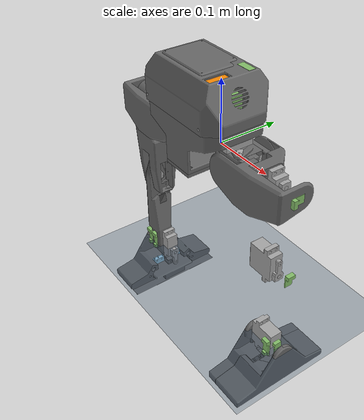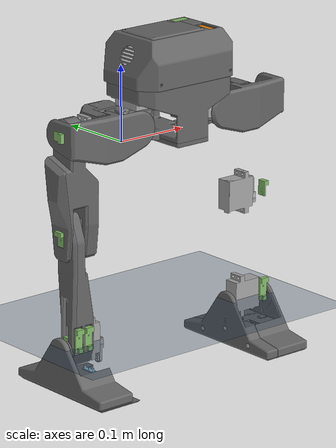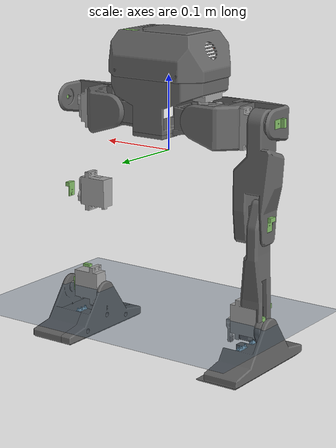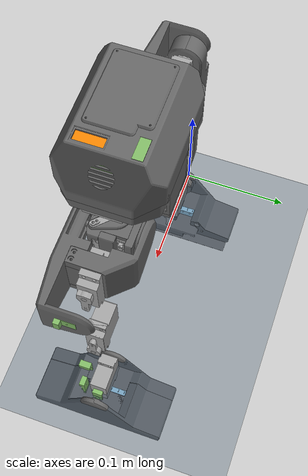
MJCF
<mujoco model="scene">
    <option timestep="0.005" gravity="0 0 -9.8" integrator="implicitfast"/>
    <include file="src/gnoci_gym/desc/gnoci.xml" />
    <default>
        <default class="miuzei_25kg">
            <position
                kp="49.80626029233553"
                kv="2.5679157997056907"
                ctrllimited="true"
                forcerange="-2.4377543428059765 2.4377543428059765"
                forcelimited="true"
            />
        </default>
    </default>

    <visual>
        <headlight diffuse="0.6 0.6 0.6" ambient="0.3 0.3 0.3" specular="0 0 0" />
        <rgba haze="0.15 0.25 0.35 1" />
        <global azimuth="160" elevation="-0.2" />
    </visual>

    <asset>
        <texture type="skybox" builtin="gradient" rgb1="0.3 0.5 0.7" rgb2="0 0 0" width="512"
            height="3072" />
        <texture type="2d" name="groundplane" builtin="checker" mark="edge" rgb1="0.2 0.3 0.4"
            rgb2="0.1 0.2 0.3"
            markrgb="0.8 0.8 0.8" width="300" height="300"/>
        <material name="groundplane" texture="groundplane" texuniform="true" texrepeat="5 5"
            reflectance="0.2" />
    </asset>

    <worldbody>
        <light pos="0 0 3.5" dir="0 0 -0.1" directional="true" />
        <camera name="track" mode="trackcom" pos="-0.5 -0.5 0.35"
            xyaxes="0.7071 -0.7071 0 0.4082 0.4082 0.8165"/>
        <geom name="floor" size="0 0 0.05" pos="0 0 -0.23" type="plane" material="groundplane" friction="1.0 0.005 0.0001"/>
    </worldbody>
</mujoco>

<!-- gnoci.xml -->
<mujoco model="onshape_export">
  <compiler angle="radian" meshdir="src/gnoci_gym/desc/assets" autolimits="true" />
  <default>
    <default class="onshape_export">
      <joint frictionloss="0.1" armature="0.005" />
      <position kp="50" dampratio="1" />
      <default class="visual">
        <geom type="mesh" contype="0" conaffinity="0" group="2" />
      </default>
      <default class="collision">
        <geom group="3" />
      </default>
    </default>
  </default>
  <worldbody>
    <body name="head_base" pos="0 0 0" quat="1 0 0 0" childclass="onshape_export">
      <freejoint name="root" />
      <geom type="mesh" class="visual" pos="0.0352673 -0.0419394 0.0175252" quat="1 -0 -0 0" mesh="head_servo_left" material="head_servo_left_material" mass="0.063" />
      <geom type="mesh" class="visual" pos="0.0352673 -0.0419394 0.0175252" quat="1 -0 -0 -0" mesh="head_servo_right" material="head_servo_right_material" mass="0.063" />
      <geom type="mesh" class="visual" pos="0.0279055 -0.0414035 0.0161252" quat="1 0 0 0" mesh="head_battery" material="head_battery_material" mass="0.089" />
      <geom type="mesh" class="visual" pos="0.0352673 -0.0419394 0.0171252" quat="1 0 0 0" mesh="head_base" material="head_base_material" mass="0.027" />
      <geom type="mesh" class="visual" pos="0.0357205 -0.0415894 0.0169139" quat="1 -0 -0 -0" mesh="head_fan" material="head_fan_material" mass="0.006" />
      <geom type="mesh" class="visual" pos="0.0352673 -0.0419394 0.0166252" quat="1 0 0 0" mesh="head_r_sense_left" material="head_r_sense_left_material" mass="1e-05" />
      <geom type="mesh" class="visual" pos="0.0352673 -0.0419394 0.0171252" quat="1 0 0 0" mesh="head_midframe" material="head_midframe_material" mass="0.037" />
      <geom type="mesh" class="visual" pos="0.0352673 -0.0415894 0.0171252" quat="1 0 0 -0" mesh="head_button" material="head_button_material" mass="0.012" />
      <geom type="mesh" class="visual" pos="0.0352673 -0.0419394 0.0171252" quat="1 0 0 0" mesh="head_main" material="head_main_material" mass="0.08" />
      <geom type="mesh" class="visual" pos="0.0352673 -0.0419394 0.0166252" quat="1 0 0 0" mesh="head_r_sense_right" material="head_r_sense_right_material" mass="1e-05" />
      <geom type="mesh" class="visual" pos="0.0352673 -0.0415894 0.0171252" quat="1 0 0 0" mesh="head_voltmeter" material="head_voltmeter_material" mass="0.003" />
      <geom type="mesh" class="visual" pos="0.0352673 -0.0419394 0.0171252" quat="1 0 0 0" mesh="head_powerboard" material="head_powerboard_material" />
      <geom type="mesh" class="visual" pos="0.0352673 -0.0415894 0.0171252" quat="1 0 0 0" mesh="head_lid" material="head_lid_material" mass="0.011" />
      <geom type="mesh" class="visual" pos="0.0352673 -0.0419394 0.0171252" quat="1 0 0 0" mesh="head_r_pi" material="head_r_pi_material" mass="0.075" />
      <geom type="mesh" class="visual" pos="0.0352673 -0.0415894 0.0171252" quat="1 0 0 0" mesh="head_top" material="head_top_material" mass="0.08" />
      <geom type="mesh" class="collision" pos="0.0352673 -0.0415894 0.0171252" quat="1 0 0 0" mesh="head_top" material="head_top_material" contype="0" conaffinity="0" mass="0.08" />
      <body name="left_yoke_lower_frame" pos="0.0962673 -0.0419394 0.0535752" quat="1 -0 0 -0">
        <joint axis="-0.0 -0.0 -1.0" name="head__left_yoke" type="hinge" range="-0.9016370916 0.6974335691" ref="0.0000000000" damping="0.17889452739994438" frictionloss="0.0072408653310164755" armature="0.014643797951585229" />
        <geom type="mesh" class="visual" pos="-0.061 0.00015 -0.03575" quat="1 0 -0 -0" mesh="left_yoke_r_sense" material="left_yoke_r_sense_material" mass="1e-05" />
        <geom type="mesh" class="visual" pos="-0.061 0.0001 -0.03575" quat="1 0 -0 -0" mesh="left_yoke_servo" material="left_yoke_servo_material" mass="0.063" />
        <geom type="mesh" class="visual" pos="-0.061 0 -0.03575" quat="1 0 0 -0" mesh="left_yoke_upper_frame" material="left_yoke_upper_frame_material" mass="0.01" />
        <geom type="mesh" class="visual" pos="-0.061 0 -0.03605" quat="1 0 0 0" mesh="head_servo_horn_left" material="head_servo_horn_left_material" mass="0.063" />
        <geom type="mesh" class="collision" pos="-0.061 0 -0.03605" quat="1 0 0 0" mesh="head_servo_horn_left" material="head_servo_horn_left_material" contype="0" conaffinity="0" mass="0.063" />
        <geom type="mesh" class="visual" pos="-0.061 0.00015 -0.03575" quat="1 0 -0 -0" mesh="left_yoke_lower_frame" material="left_yoke_lower_frame_material" mass="0.02" />
        <body name="left_hip_back" pos="0.01 -0.03 -0.0147" quat="0.707107 -0.707107 0 -0">
          <joint axis="-0.0 -0.0 -1.0" name="left_yoke__hip" type="hinge" range="-0.4241150082 0.6785840132" ref="0.0000000000" damping="0.17889452739994438" frictionloss="0.0072408653310164755" armature="0.014643797951585229" />
          <geom type="mesh" class="visual" pos="-0.071 0.0213479 0.0304" quat="0.707107 0.707107 0 -0" mesh="left_hip_back" material="left_hip_back_material" mass="0.023" />
          <geom type="mesh" class="collision" pos="-0.071 0.0213479 0.0304" quat="0.707107 0.707107 0 -0" mesh="left_hip_back" material="left_hip_back_material" contype="0" conaffinity="0" mass="0.023" />
          <geom type="mesh" class="visual" pos="-0.071 0.0213479 0.0304" quat="0.707107 0.707107 0 -0" mesh="left_hip_servo" material="left_hip_servo_material" mass="0.063" />
          <geom type="mesh" class="visual" pos="-0.071 0.02105 0.0301" quat="0.707107 0.707107 0 -0" mesh="left_yoke_servo_horn" material="left_yoke_servo_horn_material" mass="0.063" />
          <geom type="mesh" class="collision" pos="-0.071 0.02105 0.0301" quat="0.707107 0.707107 0 -0" mesh="left_yoke_servo_horn" material="left_yoke_servo_horn_material" contype="0" conaffinity="0" mass="0.063" />
          <geom type="mesh" class="visual" pos="-0.0722 0.02105 0.0304" quat="0.707107 0.707107 0 -0" mesh="left_hip_r_sense" material="left_hip_r_sense_material" mass="1e-05" />
          <geom type="mesh" class="visual" pos="-0.071 0.02105 0.0304" quat="0.707107 0.707107 0 -0" mesh="left_hip_front" material="left_hip_front_material" mass="0.036" />
          <geom type="mesh" class="collision" pos="-0.071 0.02105 0.0304" quat="0.707107 0.707107 0 -0" mesh="left_hip_front" material="left_hip_front_material" contype="0" conaffinity="0" mass="0.036" />
          <body name="left_upper_leg" pos="0.0755 -0.00365213 0.0301319" quat="0.707107 0 -0.707107 -0">
            <joint axis="-0.0 -0.0 -1.0" name="left_hip__upper_leg" type="hinge" range="-0.8168140899 1.3917255455" ref="-0.7068583471" damping="0.17889452739994438" frictionloss="0.0072408653310164755" armature="0.014643797951585229" />
            <geom type="mesh" class="visual" pos="0.000268125 0.025 0.1476" quat="0.5 0.5 0.5 -0.5" mesh="left_upper_leg_r_sense" material="left_upper_leg_r_sense_material" mass="1e-05" />
            <geom type="mesh" class="visual" pos="0.000268125 0.025 0.1468" quat="0.5 0.5 0.5 -0.5" mesh="left_upper_leg" material="left_upper_leg_material" mass="0.067" />
            <geom type="mesh" class="collision" pos="0.000268125 0.025 0.1468" quat="0.5 0.5 0.5 -0.5" mesh="left_upper_leg" material="left_upper_leg_material" contype="0" conaffinity="0" mass="0.067" />
            <geom type="mesh" class="visual" pos="0.000268125 0.025 0.1468" quat="0.5 0.5 0.5 -0.5" mesh="left_upper_leg_servo" material="left_upper_leg_servo_material" mass="0.063" />
            <geom type="mesh" class="visual" pos="0.000268125 0.025 0.1465" quat="0.5 0.5 0.5 -0.5" mesh="left_hip_servo_horn" material="left_hip_servo_horn_material" mass="0.063" />
            <geom type="mesh" class="collision" pos="0.000268125 0.025 0.1465" quat="0.5 0.5 0.5 -0.5" mesh="left_hip_servo_horn" material="left_hip_servo_horn_material" contype="0" conaffinity="0" mass="0.063" />
            <body name="left_lower_leg" pos="0 0.14 -0.0021" quat="1 -0 -0 -0">
              <joint axis="-0.0 -0.0 -1.0" name="left_upper_leg__lower_leg" type="hinge" range="-0.9424777961 1.3446016557" ref="1.4137166941" damping="0.17889452739994438" frictionloss="0.0072408653310164755" armature="0.014643797951585229" />
              <geom type="mesh" class="visual" pos="0.000268125 -0.115 0.1492" quat="0.5 0.5 0.5 -0.5" mesh="left_lower_leg_servo" material="left_lower_leg_servo_material" mass="0.063" />
              <geom type="mesh" class="visual" pos="0.000268125 -0.115 0.1489" quat="0.5 0.5 0.5 -0.5" mesh="left_upper_leg_servo_horn" material="left_upper_leg_servo_horn_material" mass="0.063" />
              <geom type="mesh" class="collision" pos="0.000268125 -0.115 0.1489" quat="0.5 0.5 0.5 -0.5" mesh="left_upper_leg_servo_horn" material="left_upper_leg_servo_horn_material" contype="0" conaffinity="0" mass="0.063" />
              <geom type="mesh" class="visual" pos="0.000268125 -0.115 0.1492" quat="0.5 0.5 0.5 -0.5" mesh="left_lower_leg" material="left_lower_leg_material" mass="0.044" />
              <geom type="mesh" class="collision" pos="0.000268125 -0.115 0.1492" quat="0.5 0.5 0.5 -0.5" mesh="left_lower_leg" material="left_lower_leg_material" contype="0" conaffinity="0" mass="0.044" />
              <geom type="mesh" class="visual" pos="0.000968125 -0.115 0.1492" quat="0.5 0.5 0.5 -0.5" mesh="left_lower_leg_c_sense_1" material="left_lower_leg_c_sense_1_material" mass="1e-05" />
              <geom type="mesh" class="visual" pos="0.000968125 -0.115 0.1492" quat="0.5 0.5 0.5 -0.5" mesh="left_lower_leg_c_sense_2" material="left_lower_leg_c_sense_2_material" mass="1e-05" />
              <geom type="mesh" class="visual" pos="0.000268125 -0.115 0.1492" quat="0.5 0.5 0.5 -0.5" mesh="left_lower_leg_r_sense" material="left_lower_leg_r_sense_material" mass="1e-05" />
              <body name="left_foot_base" pos="-0 0.14 0.0426" quat="0 -1 0 -0">
                <joint axis="-0.0 -0.0 -1.0" name="left_lower_leg__foot" type="hinge" range="-0.9613273520 1.5550883635" ref="0.7068583471" damping="0.17889452739994438" frictionloss="0.0072408653310164755" armature="0.014643797951585229" />
                <geom type="mesh" class="visual" pos="0.000268125 0.255 -0.1063" quat="0.5 -0.5 -0.5 -0.5" mesh="left_foot_limit_switch_1" material="left_foot_limit_switch_1_material" />
                <geom type="mesh" class="collision" pos="0.000268125 0.255 -0.1063" quat="0.5 -0.5 -0.5 -0.5" mesh="left_foot_limit_switch_1" material="left_foot_limit_switch_1_material" contype="0" conaffinity="0" />
                <geom type="mesh" class="visual" pos="0.000268105 0.258024 -0.106099" quat="0.5 -0.5 -0.5 -0.5" mesh="left_foot_base" material="left_foot_base_material" mass="0.023" />
                <geom type="mesh" class="collision" pos="0.000268105 0.258024 -0.106099" quat="0.5 -0.5 -0.5 -0.5" mesh="left_foot_base" material="left_foot_base_material" contype="0" conaffinity="0" mass="0.023" />
                <geom type="mesh" class="visual" pos="0.000268125 0.255 -0.1063" quat="0.5 -0.5 -0.5 -0.5" mesh="left_foot_right_side" material="left_foot_right_side_material" mass="0.024" />
                <geom type="mesh" class="collision" pos="0.000268125 0.255 -0.1063" quat="0.5 -0.5 -0.5 -0.5" mesh="left_foot_right_side" material="left_foot_right_side_material" contype="0" conaffinity="0" mass="0.024" />
                <geom type="mesh" class="visual" pos="0.000268125 0.255 -0.1063" quat="0.5 -0.5 -0.5 -0.5" mesh="left_foot_limit_switch_2" material="left_foot_limit_switch_2_material" />
                <geom type="mesh" class="collision" pos="0.000268125 0.255 -0.1063" quat="0.5 -0.5 -0.5 -0.5" mesh="left_foot_limit_switch_2" material="left_foot_limit_switch_2_material" contype="0" conaffinity="0" />
                <geom type="mesh" class="visual" pos="0.000268125 0.255 -0.1066" quat="0.5 -0.5 -0.5 -0.5" mesh="left_lower_leg_servo_horn" material="left_lower_leg_servo_horn_material" mass="0.063" />
                <geom type="mesh" class="collision" pos="0.000268125 0.255 -0.1066" quat="0.5 -0.5 -0.5 -0.5" mesh="left_lower_leg_servo_horn" material="left_lower_leg_servo_horn_material" contype="0" conaffinity="0" mass="0.063" />
                <geom type="mesh" class="visual" pos="0.000268125 0.255 -0.1063" quat="0.5 -0.5 -0.5 -0.5" mesh="left_foot_left_side" material="left_foot_left_side_material" mass="0.037" />
                <geom type="mesh" class="collision" pos="0.000268125 0.255 -0.1063" quat="0.5 -0.5 -0.5 -0.5" mesh="left_foot_left_side" material="left_foot_left_side_material" contype="0" conaffinity="0" mass="0.037" />
                <site group="3" name="forward_left_c_sense" pos="-0.07810816 -0.05216554 0.03400101" quat="0.5 0.5 -0.5 0.5" size="0.04" />
                <site group="3" name="back_left_c_sense" pos="0.07810813 -0.05216554 0.03400101" quat="0.5 0.5 -0.5 0.5" size="0.04" />
                <geom name="left_foot_front_inner_sphere" type="sphere" size="0.006" pos="-0.07810816 -0.05216554 0.00500100" solref="0.03 2" solimp="0.9 0.95 0.006 0.5 2" priority="1" group="3" contype="2" conaffinity="1" mass="0" />
                <geom name="left_foot_back_inner_sphere" type="sphere" size="0.006" pos="0.07810813 -0.05216554 0.00500100" solref="0.03 2" solimp="0.9 0.95 0.006 0.5 2" priority="1" group="3" contype="2" conaffinity="1" mass="0" />
                <geom name="left_foot_front_outer_sphere" type="sphere" size="0.006" pos="-0.07810816 -0.05216554 0.06300101" solref="0.03 2" solimp="0.9 0.95 0.006 0.5 2" priority="1" group="3" contype="2" conaffinity="1" mass="0" />
                <geom name="left_foot_back_outer_sphere" type="sphere" size="0.006" pos="0.07810813 -0.05216554 0.06300101" solref="0.03 2" solimp="0.9 0.95 0.006 0.5 2" priority="1" group="3" contype="2" conaffinity="1" mass="0" />
              </body>
            </body>
          </body>
        </body>
      </body>
      <body name="right_yoke_lower_frame" pos="-0.0257327 -0.0419394 0.0535752" quat="1 -0 -0 -0">
        <joint axis="0 0 1" name="head__right_yoke" type="hinge" range="-0.8325220532 0.7099999397" ref="0.0000000000" damping="0.17889452739994438" frictionloss="0.0072408653310164755" armature="0.014643797951585229" />
        <geom type="mesh" class="visual" pos="0.061 0 -0.03605" quat="1 0 0 0" mesh="head_servo_horn_right" material="head_servo_horn_right_material" mass="0.063" />
        <geom type="mesh" class="collision" pos="0.061 0 -0.03605" quat="1 0 0 0" mesh="head_servo_horn_right" material="head_servo_horn_right_material" contype="0" conaffinity="0" mass="0.063" />
        <geom type="mesh" class="visual" pos="0.061 0.00015 -0.03575" quat="1 0 0 0" mesh="right_yoke_r_sense" material="right_yoke_r_sense_material" mass="1e-05" />
        <geom type="mesh" class="visual" pos="0.061 0.00015 -0.03575" quat="1 0 -0 0" mesh="right_yoke_lower_frame" material="right_yoke_lower_frame_material" mass="0.02" />
        <geom type="mesh" class="visual" pos="0.061 5e-05 -0.03575" quat="1 0 -0 0" mesh="right_yoke_servo" material="right_yoke_servo_material" mass="0.063" />
        <geom type="mesh" class="visual" pos="0.061 0 -0.03575" quat="1 0 0 0" mesh="right_yoke_upper_frame" material="right_yoke_upper_frame_material" mass="0.01" />
        <body name="right_hip_back" pos="-0.01 -0.03005 -0.0147" quat="0.707107 -0.707107 -0 0">
          <joint axis="0 0 1" name="right_yoke__hip" type="hinge" range="-0.4241150082 0.6565928646" ref="0.0000000000" damping="0.17889452739994438" frictionloss="0.0072408653310164755" armature="0.014643797951585229" />
          <geom type="mesh" class="visual" pos="0.071 0.02105 0.0301" quat="0.707107 0.707107 0 -0" mesh="right_yoke_servo_horn" material="right_yoke_servo_horn_material" mass="0.063" />
          <geom type="mesh" class="collision" pos="0.071 0.02105 0.0301" quat="0.707107 0.707107 0 -0" mesh="right_yoke_servo_horn" material="right_yoke_servo_horn_material" contype="0" conaffinity="0" mass="0.063" />
          <geom type="mesh" class="visual" pos="0.071 0.02105 0.0304" quat="0.707107 0.707107 0 -0" mesh="right_hip_front" material="right_hip_front_material" mass="0.036" />
          <geom type="mesh" class="collision" pos="0.071 0.02105 0.0304" quat="0.707107 0.707107 0 -0" mesh="right_hip_front" material="right_hip_front_material" contype="0" conaffinity="0" mass="0.036" />
          <geom type="mesh" class="visual" pos="0.071 0.0213479 0.0304" quat="0.707107 0.707107 0 -0" mesh="right_hip_back" material="right_hip_back_material" mass="0.023" />
          <geom type="mesh" class="collision" pos="0.071 0.0213479 0.0304" quat="0.707107 0.707107 0 -0" mesh="right_hip_back" material="right_hip_back_material" contype="0" conaffinity="0" mass="0.023" />
          <geom type="mesh" class="visual" pos="0.0722 0.02105 0.0304" quat="0.707107 0.707107 0 0" mesh="right_hip_r_sense" material="right_hip_r_sense_material" mass="1e-05" />
          <geom type="mesh" class="visual" pos="0.071 0.0213479 0.0304" quat="0.707107 0.707107 0 -0" mesh="right_hip_servo" material="right_hip_servo_material" mass="0.063" />
          <body name="right_upper_leg" pos="-0.0755 -0.00365213 0.0301319" quat="0 -0.707107 0 -0.707107">
            <joint axis="0 0 1" name="right_hip__upper_leg" type="hinge" range="-0.8607963871 1.4294246574" ref="-0.7068583471" damping="0.17889452739994438" frictionloss="0.0072408653310164755" armature="0.014643797951585229" />
            <geom type="mesh" class="visual" pos="0.000268125 -0.025 0.1465" quat="0.5 -0.5 -0.5 -0.5" mesh="right_hip_servo_horn" material="right_hip_servo_horn_material" mass="0.063" />
            <geom type="mesh" class="collision" pos="0.000268125 -0.025 0.1465" quat="0.5 -0.5 -0.5 -0.5" mesh="right_hip_servo_horn" material="right_hip_servo_horn_material" contype="0" conaffinity="0" mass="0.063" />
            <geom type="mesh" class="visual" pos="0.000268125 -0.025 0.1468" quat="0.5 -0.5 -0.5 -0.5" mesh="right_upper_leg_servo" material="right_upper_leg_servo_material" mass="0.063" />
            <geom type="mesh" class="visual" pos="0.000268125 -0.025 0.1468" quat="0.5 -0.5 -0.5 -0.5" mesh="right_upper_leg" material="right_upper_leg_material" mass="0.067" />
            <geom type="mesh" class="collision" pos="0.000268125 -0.025 0.1468" quat="0.5 -0.5 -0.5 -0.5" mesh="right_upper_leg" material="right_upper_leg_material" contype="0" conaffinity="0" mass="0.067" />
            <geom type="mesh" class="visual" pos="0.000268125 -0.025 0.1476" quat="0.5 -0.5 -0.5 -0.5" mesh="right_upper_leg_r_sense" material="right_upper_leg_r_sense_material" mass="1e-05" />
            <body name="right_lower_leg" pos="-0 -0.14 -0.0021" quat="1 -0 0 -0">
              <joint axis="0 0 1" name="right_upper_leg__lower_leg" type="hinge" range="-0.8796459430 1.4011503235" ref="1.4137166941" damping="0.17889452739994438" frictionloss="0.0072408653310164755" armature="0.014643797951585229" />
              <geom type="mesh" class="visual" pos="0.000268125 0.115 0.1492" quat="0.5 -0.5 -0.5 -0.5" mesh="right_lower_leg_r_sense" material="right_lower_leg_r_sense_material" mass="1e-05" />
              <geom type="mesh" class="visual" pos="0.000968125 0.115 0.1492" quat="0.5 -0.5 -0.5 -0.5" mesh="right_lower_leg_c_sense_2" material="right_lower_leg_c_sense_2_material" mass="1e-05" />
              <geom type="mesh" class="visual" pos="0.000268125 0.115 0.1492" quat="0.5 -0.5 -0.5 -0.5" mesh="right_lower_leg" material="right_lower_leg_material" mass="0.044" />
              <geom type="mesh" class="collision" pos="0.000268125 0.115 0.1492" quat="0.5 -0.5 -0.5 -0.5" mesh="right_lower_leg" material="right_lower_leg_material" contype="0" conaffinity="0" mass="0.044" />
              <geom type="mesh" class="visual" pos="0.000268125 0.115 0.1489" quat="0.5 -0.5 -0.5 -0.5" mesh="right_upper_leg_servo_horn" material="right_upper_leg_servo_horn_material" mass="0.063" />
              <geom type="mesh" class="collision" pos="0.000268125 0.115 0.1489" quat="0.5 -0.5 -0.5 -0.5" mesh="right_upper_leg_servo_horn" material="right_upper_leg_servo_horn_material" contype="0" conaffinity="0" mass="0.063" />
              <geom type="mesh" class="visual" pos="0.000268125 0.115 0.1492" quat="0.5 -0.5 -0.5 -0.5" mesh="right_lower_leg_servo" material="right_lower_leg_servo_material" mass="0.063" />
              <geom type="mesh" class="visual" pos="0.000968125 0.115 0.1492" quat="0.5 -0.5 -0.5 -0.5" mesh="right_lower_leg_c_sense_1" material="right_lower_leg_c_sense_1_material" mass="1e-05" />
              <body name="right_foot_base" pos="0 -0.14 0.0426" quat="0 1 0 -0">
                <joint axis="0 0 1" name="right_lower_leg__foot" type="hinge" range="-0.9016370916 1.6524777358" ref="0.7068583471" damping="0.17889452739994438" frictionloss="0.0072408653310164755" armature="0.014643797951585229" />
                <geom type="mesh" class="visual" pos="0.000268125 -0.255 -0.1066" quat="0.5 0.5 0.5 -0.5" mesh="right_lower_leg_servo_horn" material="right_lower_leg_servo_horn_material" mass="0.063" />
                <geom type="mesh" class="collision" pos="0.000268125 -0.255 -0.1066" quat="0.5 0.5 0.5 -0.5" mesh="right_lower_leg_servo_horn" material="right_lower_leg_servo_horn_material" contype="0" conaffinity="0" mass="0.063" />
                <geom type="mesh" class="visual" pos="0.000268125 -0.255 -0.1063" quat="0.5 0.5 0.5 -0.5" mesh="right_foot_right_side" material="right_foot_right_side_material" mass="0.037" />
                <geom type="mesh" class="collision" pos="0.000268125 -0.255 -0.1063" quat="0.5 0.5 0.5 -0.5" mesh="right_foot_right_side" material="right_foot_right_side_material" contype="0" conaffinity="0" mass="0.037" />
                <geom type="mesh" class="visual" pos="0.000268125 -0.255 -0.1063" quat="0.5 0.5 0.5 -0.5" mesh="right_foot_left_side" material="right_foot_left_side_material" mass="0.024" />
                <geom type="mesh" class="collision" pos="0.000268125 -0.255 -0.1063" quat="0.5 0.5 0.5 -0.5" mesh="right_foot_left_side" material="right_foot_left_side_material" contype="0" conaffinity="0" mass="0.024" />
                <geom type="mesh" class="visual" pos="0.000268125 -0.255 -0.1063" quat="0.5 0.5 0.5 -0.5" mesh="right_foot_limit_switch_2" material="right_foot_limit_switch_2_material" />
                <geom type="mesh" class="collision" pos="0.000268125 -0.255 -0.1063" quat="0.5 0.5 0.5 -0.5" mesh="right_foot_limit_switch_2" material="right_foot_limit_switch_2_material" contype="0" conaffinity="0" />
                <geom type="mesh" class="visual" pos="0.000268113 -0.258024 -0.106501" quat="0.5 0.5 0.5 -0.5" mesh="right_foot_base" material="right_foot_base_material" mass="0.023" />
                <geom type="mesh" class="collision" pos="0.000268113 -0.258024 -0.106501" quat="0.5 0.5 0.5 -0.5" mesh="right_foot_base" material="right_foot_base_material" contype="0" conaffinity="0" mass="0.023" />
                <geom type="mesh" class="visual" pos="0.000268125 -0.255 -0.1063" quat="0.5 0.5 0.5 -0.5" mesh="right_foot_limit_switch_1" material="right_foot_limit_switch_1_material" />
                <geom type="mesh" class="collision" pos="0.000268125 -0.255 -0.1063" quat="0.5 0.5 0.5 -0.5" mesh="right_foot_limit_switch_1" material="right_foot_limit_switch_1_material" contype="0" conaffinity="0" />
                <site group="3" name="forward_right_c_sense" pos="-0.07810816 0.05216554 0.03400101" quat="0.5 -0.5 0.5 0.5" size="0.04" />
                <site group="3" name="back_right_c_sense" pos="0.07810813 0.05216554 0.03400101" quat="0.5 -0.5 0.5 0.5" size="0.04" />
                <geom name="right_foot_front_outer_sphere" type="sphere" size="0.006" pos="-0.07810816 0.05216554 0.00500100" solref="0.03 2" solimp="0.9 0.95 0.006 0.5 2" priority="1" group="3" contype="2" conaffinity="1" mass="0" />
                <geom name="right_foot_back_outer_sphere" type="sphere" size="0.006" pos="0.07810813 0.05216554 0.00500100" solref="0.03 2" solimp="0.9 0.95 0.006 0.5 2" priority="1" group="3" contype="2" conaffinity="1" mass="0" />
                <geom name="right_foot_front_inner_sphere" type="sphere" size="0.006" pos="-0.07810816 0.05216554 0.06300101" solref="0.03 2" solimp="0.9 0.95 0.006 0.5 2" priority="1" group="3" contype="2" conaffinity="1" mass="0" />
                <geom name="right_foot_back_inner_sphere" type="sphere" size="0.006" pos="0.07810813 0.05216554 0.06300101" solref="0.03 2" solimp="0.9 0.95 0.006 0.5 2" priority="1" group="3" contype="2" conaffinity="1" mass="0" />
              </body>
            </body>
          </body>
        </body>
      </body>
      <site group="3" name="imu" pos="0.0202673 -0.0559394 0.0971252" quat="0 1 0 0" />
    </body>
  </worldbody>
  <asset>
    <mesh file="left_yoke_servo.stl" />
    <mesh file="right_hip_front.stl" />
    <mesh file="right_yoke_servo_horn.stl" />
    <mesh file="left_lower_leg_c_sense_1.stl" />
    <mesh file="left_lower_leg_c_sense_2.stl" />
    <mesh file="left_yoke_r_sense.stl" />
    <mesh file="left_lower_leg_servo_horn.stl" />
    <mesh file="left_upper_leg_servo.stl" />
    <mesh file="right_lower_leg_servo.stl" />
    <mesh file="head_r_sense_left.stl" />
    <mesh file="right_foot_limit_switch_2.stl" />
    <mesh file="right_yoke_r_sense.stl" />
    <mesh file="left_upper_leg_servo_horn.stl" />
    <mesh file="head_r_sense_right.stl" />
    <mesh file="head_r_pi.stl" />
    <mesh file="left_hip_servo_horn.stl" />
    <mesh file="head_lid.stl" />
    <mesh file="head_servo_right.stl" />
    <mesh file="left_lower_leg_servo.stl" />
    <mesh file="head_voltmeter.stl" />
    <mesh file="left_lower_leg_r_sense.stl" />
    <mesh file="head_button.stl" />
    <mesh file="left_foot_base.stl" />
    <mesh file="right_upper_leg.stl" />
    <mesh file="left_foot_limit_switch_1.stl" />
    <mesh file="head_base.stl" />
    <mesh file="right_hip_back.stl" />
    <mesh file="head_battery.stl" />
    <mesh file="right_upper_leg_r_sense.stl" />
    <mesh file="right_hip_servo.stl" />
    <mesh file="head_fan.stl" />
    <mesh file="left_yoke_upper_frame.stl" />
    <mesh file="left_hip_back.stl" />
    <mesh file="right_foot_left_side.stl" />
    <mesh file="left_yoke_servo_horn.stl" />
    <mesh file="left_hip_front.stl" />
    <mesh file="left_upper_leg.stl" />
    <mesh file="right_upper_leg_servo.stl" />
    <mesh file="head_midframe.stl" />
    <mesh file="left_upper_leg_r_sense.stl" />
    <mesh file="right_lower_leg_c_sense_1.stl" />
    <mesh file="right_hip_servo_horn.stl" />
    <mesh file="right_upper_leg_servo_horn.stl" />
    <mesh file="head_main.stl" />
    <mesh file="right_foot_limit_switch_1.stl" />
    <mesh file="right_yoke_servo.stl" />
    <mesh file="left_foot_right_side.stl" />
    <mesh file="right_lower_leg.stl" />
    <mesh file="head_top.stl" />
    <mesh file="head_servo_horn_left.stl" />
    <mesh file="left_hip_r_sense.stl" />
    <mesh file="right_lower_leg_servo_horn.stl" />
    <mesh file="left_lower_leg.stl" />
    <mesh file="left_foot_limit_switch_2.stl" />
    <mesh file="right_hip_r_sense.stl" />
    <mesh file="head_servo_left.stl" />
    <mesh file="left_yoke_lower_frame.stl" />
    <mesh file="right_yoke_lower_frame.stl" />
    <mesh file="right_yoke_upper_frame.stl" />
    <mesh file="right_lower_leg_r_sense.stl" />
    <mesh file="right_foot_right_side.stl" />
    <mesh file="right_foot_base.stl" />
    <mesh file="right_lower_leg_c_sense_2.stl" />
    <mesh file="left_foot_left_side.stl" />
    <mesh file="left_hip_servo.stl" />
    <mesh file="head_servo_horn_right.stl" />
    <mesh file="head_powerboard.stl" />
    <material name="head_servo_left_material" rgba="0.647059 0.647059 0.647059 1" />
    <material name="head_servo_right_material" rgba="0.647059 0.647059 0.647059 1" />
    <material name="head_battery_material" rgba="0.87451 0.447059 0.317647 1" />
    <material name="head_base_material" rgba="0.4 0.4 0.4 1" />
    <material name="head_fan_material" rgba="0.917647 0.917647 0.917647 1" />
    <material name="head_r_sense_left_material" rgba="0.513725 0.737255 0.407843 1" />
    <material name="head_midframe_material" rgba="0.4 0.4 0.4 1" />
    <material name="head_button_material" rgba="0.972549 0.529412 0.00392157 1" />
    <material name="head_main_material" rgba="0.4 0.4 0.4 1" />
    <material name="head_r_sense_right_material" rgba="0.513725 0.737255 0.407843 1" />
    <material name="head_voltmeter_material" rgba="0.513725 0.737255 0.407843 1" />
    <material name="head_powerboard_material" rgba="0.513725 0.737255 0.407843 1" />
    <material name="head_lid_material" rgba="0.4 0.4 0.4 1" />
    <material name="head_r_pi_material" rgba="0.513725 0.737255 0.407843 1" />
    <material name="head_top_material" rgba="0.4 0.4 0.4 1" />
    <material name="left_yoke_r_sense_material" rgba="0.513725 0.737255 0.407843 1" />
    <material name="left_yoke_servo_material" rgba="0.647059 0.647059 0.647059 1" />
    <material name="left_yoke_upper_frame_material" rgba="0.4 0.4 0.4 1" />
    <material name="head_servo_horn_left_material" rgba="0.647059 0.647059 0.647059 1" />
    <material name="left_yoke_lower_frame_material" rgba="0.4 0.4 0.4 1" />
    <material name="left_hip_back_material" rgba="0.4 0.4 0.4 1" />
    <material name="left_hip_servo_material" rgba="0.647059 0.647059 0.647059 1" />
    <material name="left_yoke_servo_horn_material" rgba="0.647059 0.647059 0.647059 1" />
    <material name="left_hip_r_sense_material" rgba="0.513725 0.737255 0.407843 1" />
    <material name="left_hip_front_material" rgba="0.4 0.4 0.4 1" />
    <material name="left_upper_leg_r_sense_material" rgba="0.513725 0.737255 0.407843 1" />
    <material name="left_upper_leg_material" rgba="0.4 0.4 0.4 1" />
    <material name="left_upper_leg_servo_material" rgba="0.647059 0.647059 0.647059 1" />
    <material name="left_hip_servo_horn_material" rgba="0.647059 0.647059 0.647059 1" />
    <material name="left_lower_leg_servo_material" rgba="0.647059 0.647059 0.647059 1" />
    <material name="left_upper_leg_servo_horn_material" rgba="0.647059 0.647059 0.647059 1" />
    <material name="left_lower_leg_material" rgba="0.4 0.4 0.4 1" />
    <material name="left_lower_leg_c_sense_1_material" rgba="0.513725 0.737255 0.407843 1" />
    <material name="left_lower_leg_c_sense_2_material" rgba="0.513725 0.737255 0.407843 1" />
    <material name="left_lower_leg_r_sense_material" rgba="0.513725 0.737255 0.407843 1" />
    <material name="left_foot_limit_switch_1_material" rgba="0.615686 0.811765 0.929412 1" />
    <material name="left_foot_base_material" rgba="0.4 0.4 0.4 1" />
    <material name="left_foot_right_side_material" rgba="0.4 0.4 0.4 1" />
    <material name="left_foot_limit_switch_2_material" rgba="0.615686 0.811765 0.929412 1" />
    <material name="left_lower_leg_servo_horn_material" rgba="0.647059 0.647059 0.647059 1" />
    <material name="left_foot_left_side_material" rgba="0.4 0.4 0.4 1" />
    <material name="head_servo_horn_right_material" rgba="0.647059 0.647059 0.647059 1" />
    <material name="right_yoke_r_sense_material" rgba="0.513725 0.737255 0.407843 1" />
    <material name="right_yoke_lower_frame_material" rgba="0.4 0.4 0.4 1" />
    <material name="right_yoke_servo_material" rgba="0.647059 0.647059 0.647059 1" />
    <material name="right_yoke_upper_frame_material" rgba="0.4 0.4 0.4 1" />
    <material name="right_yoke_servo_horn_material" rgba="0.647059 0.647059 0.647059 1" />
    <material name="right_hip_front_material" rgba="0.4 0.4 0.4 1" />
    <material name="right_hip_back_material" rgba="0.4 0.4 0.4 1" />
    <material name="right_hip_r_sense_material" rgba="0.513725 0.737255 0.407843 1" />
    <material name="right_hip_servo_material" rgba="0.647059 0.647059 0.647059 1" />
    <material name="right_hip_servo_horn_material" rgba="0.647059 0.647059 0.647059 1" />
    <material name="right_upper_leg_servo_material" rgba="0.647059 0.647059 0.647059 1" />
    <material name="right_upper_leg_material" rgba="0.4 0.4 0.4 1" />
    <material name="right_upper_leg_r_sense_material" rgba="0.513725 0.737255 0.407843 1" />
    <material name="right_lower_leg_r_sense_material" rgba="0.513725 0.737255 0.407843 1" />
    <material name="right_lower_leg_c_sense_2_material" rgba="0.513725 0.737255 0.407843 1" />
    <material name="right_lower_leg_material" rgba="0.4 0.4 0.4 1" />
    <material name="right_upper_leg_servo_horn_material" rgba="0.647059 0.647059 0.647059 1" />
    <material name="right_lower_leg_servo_material" rgba="0.647059 0.647059 0.647059 1" />
    <material name="right_lower_leg_c_sense_1_material" rgba="0.513725 0.737255 0.407843 1" />
    <material name="right_lower_leg_servo_horn_material" rgba="0.647059 0.647059 0.647059 1" />
    <material name="right_foot_right_side_material" rgba="0.4 0.4 0.4 1" />
    <material name="right_foot_left_side_material" rgba="0.4 0.4 0.4 1" />
    <material name="right_foot_limit_switch_2_material" rgba="0.615686 0.811765 0.929412 1" />
    <material name="right_foot_base_material" rgba="0.4 0.4 0.4 1" />
    <material name="right_foot_limit_switch_1_material" rgba="0.615686 0.811765 0.929412 1" />
  </asset>
  <actuator>
    <position class="miuzei_25kg" name="head__left_yoke" joint="head__left_yoke" inheritrange="1" />
    <position class="miuzei_25kg" name="left_yoke__hip" joint="left_yoke__hip" inheritrange="1" />
    <position class="miuzei_25kg" name="left_hip__upper_leg" joint="left_hip__upper_leg" inheritrange="1" />
    <position class="miuzei_25kg" name="left_upper_leg__lower_leg" joint="left_upper_leg__lower_leg" inheritrange="1" />
    <position class="miuzei_25kg" name="left_lower_leg__foot" joint="left_lower_leg__foot" inheritrange="1" />
    <position class="miuzei_25kg" name="head__right_yoke" joint="head__right_yoke" inheritrange="1" />
    <position class="miuzei_25kg" name="right_yoke__hip" joint="right_yoke__hip" inheritrange="1" />
    <position class="miuzei_25kg" name="right_hip__upper_leg" joint="right_hip__upper_leg" inheritrange="1" />
    <position class="miuzei_25kg" name="right_upper_leg__lower_leg" joint="right_upper_leg__lower_leg" inheritrange="1" />
    <position class="miuzei_25kg" name="right_lower_leg__foot" joint="right_lower_leg__foot" inheritrange="1" />
  </actuator>
  <equality />
  <sensor>
    <jointpos name="head__left_yoke-pos" joint="head__left_yoke" />
    <jointpos name="left_yoke__hip-pos" joint="left_yoke__hip" />
    <jointpos name="left_hip__upper_leg-pos" joint="left_hip__upper_leg" />
    <jointpos name="left_upper_leg__lower_leg-pos" joint="left_upper_leg__lower_leg" />
    <jointpos name="left_lower_leg__foot-pos" joint="left_lower_leg__foot" />
    <jointpos name="head__right_yoke-pos" joint="head__right_yoke" />
    <jointpos name="right_yoke__hip-pos" joint="right_yoke__hip" />
    <jointpos name="right_hip__upper_leg-pos" joint="right_hip__upper_leg" />
    <jointpos name="right_upper_leg__lower_leg-pos" joint="right_upper_leg__lower_leg" />
    <jointpos name="right_lower_leg__foot-pos" joint="right_lower_leg__foot" />
    <touch name="forward_left_c_sense-touch" site="forward_left_c_sense" />
    <touch name="back_left_c_sense-touch" site="back_left_c_sense" />
    <touch name="forward_right_c_sense-touch" site="forward_right_c_sense" />
    <touch name="back_right_c_sense-touch" site="back_right_c_sense" />
    <gyro name="imu-gyro" site="imu" />
    <accelerometer name="imu-acc" site="imu" />
  </sensor>
</mujoco>
